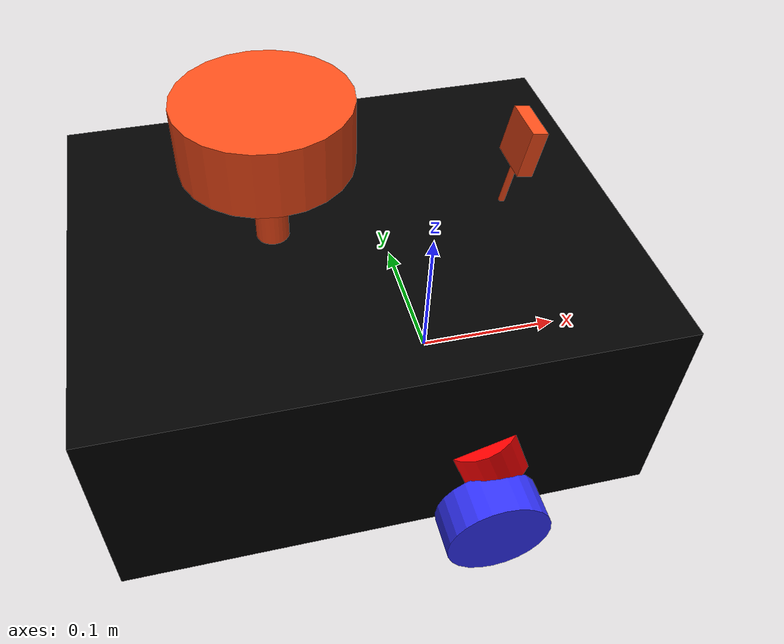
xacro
<?xml version="1.0"?>
<robot xmlns:xacro="http://www.ros.org/wiki/xacro"  name="robot">

    <xacro:arg name="use_ros2_control" default="true"/>
    <xacro:arg name="sim_mode" default="false"/>

    <xacro:include filename="robot_core.xacro" />

    <xacro:if value="$(arg use_ros2_control)">
        <xacro:include filename="ros2_control.xacro" />
    </xacro:if>
    <xacro:unless value="$(arg use_ros2_control)">
        <xacro:include filename="gazebo_control.xacro" />
    </xacro:unless>
    <xacro:include filename="lidar.xacro" />
    <xacro:include filename="lidar_droit.xacro" />
    <xacro:include filename="lidar_gauche.xacro" />
    <xacro:include filename="camera.xacro" />

</robot>

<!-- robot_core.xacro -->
<robot xmlns:xacro="http://www.ros.org/wiki/xacro" >

    <xacro:include filename="inertial_macros.xacro"/>

    <xacro:property name="chassis_length" value="0.335"/>
    <xacro:property name="chassis_width" value="0.265"/>
    <xacro:property name="chassis_height" value="0.138"/>
    <xacro:property name="chassis_mass" value="1.0"/>
    <xacro:property name="wheel_radius" value="0.033"/>
    <xacro:property name="wheel_thickness" value="0.026"/>
    <xacro:property name="wheel_mass" value="0.05"/>
    <xacro:property name="wheel_offset_x" value="0.226"/>
    <xacro:property name="wheel_offset_y" value="0.1485"/>
    <xacro:property name="wheel_offset_z" value="0.01"/>
    <xacro:property name="caster_wheel_radius" value="0.01"/>
    <xacro:property name="caster_wheel_mass" value="0.01"/>
    <xacro:property name="caster_wheel_offset_x" value="0.075"/>
    <xacro:property name="caster_wheel_offset_z" value="${wheel_offset_z - wheel_radius + caster_wheel_radius}"/>

    <material name="white">
        <color rgba="1 1 1 1" />
    </material>

    <material name="orange">
        <color rgba="1 0.3 0.1 1"/>
    </material>

    <material name="blue">
        <color rgba="0.2 0.2 1 1"/>
    </material>

    <material name="black">
        <color rgba="0 0 0 1"/>
    </material>

    <material name="red">
        <color rgba="1 0 0 1"/>
    </material>

    <!-- BASE LINK -->

    <link name="base_link">

    </link>

    <!-- BASE_FOOTPRINT LINK -->

    <joint name="base_footprint_joint" type="fixed">
        <parent link="base_link"/>
        <child link="base_footprint"/>
        <origin xyz="0 0 0" rpy="0 0 0"/>
    </joint>

    <link name="base_footprint">
    </link>

    <!-- CHASSIS LINK -->

    <joint name="chassis_joint" type="fixed">
        <parent link="base_link"/>
        <child link="chassis"/>
        <origin xyz="${-wheel_offset_x} 0 ${-wheel_offset_z}"/>
    </joint>

    <link name="chassis">
        <visual>
            <origin xyz="${chassis_length/2} 0 ${chassis_height/2}"/>
            <geometry>
                <box size="${chassis_length} ${chassis_width} ${chassis_height}"/>
            </geometry>
            <material name="black"/>
        </visual>
        <collision>
            <origin xyz="${chassis_length/2} 0 ${chassis_height/2}"/>
            <geometry>
                <box size="${chassis_length} ${chassis_width} ${chassis_height}"/>
            </geometry>
        </collision>
        <xacro:inertial_box mass="0.5" x="${chassis_length}" y="${chassis_width}" z="${chassis_height}">
            <origin xyz="${chassis_length/2} 0 ${chassis_height/2}" rpy="0 0 0"/>
        </xacro:inertial_box>
    </link>

    <gazebo reference="chassis">
        <material>Gazebo/black</material>
    </gazebo>

    <!-- LEFT WHEEL LINK -->

    <joint name="left_wheel_joint" type="continuous">
        <parent link="base_link"/>
        <child link="left_wheel"/>
        <origin xyz="0 ${wheel_offset_y} 0" rpy="-${pi/2} 0 0" />
        <axis xyz="0 0 1"/>
    </joint>

    <link name="left_wheel">
        <visual>
            <geometry>
                <cylinder radius="${wheel_radius}" length="${wheel_thickness}"/>
            </geometry>
            <material name="blue"/>
        </visual>
        <collision>
            <geometry>
                <sphere radius="${wheel_radius}"/>
            </geometry>
        </collision>
        <xacro:inertial_cylinder mass="${wheel_mass}" length="${wheel_thickness}" radius="${wheel_radius}">
            <origin xyz="0 0 0" rpy="0 0 0"/>
        </xacro:inertial_cylinder>
    </link>

    <gazebo reference="left_wheel">
        <material>Gazebo/Blue</material>
    </gazebo>

    <!-- RIGHT WHEEL LINK -->

    <joint name="right_wheel_joint" type="continuous">
        <parent link="base_link"/>
        <child link="right_wheel"/>
        <origin xyz="0 ${-wheel_offset_y} 0" rpy="${pi/2} 0 0" />
        <axis xyz="0 0 -1"/>
    </joint>

    <link name="right_wheel">
        <visual>
            <geometry>
                <cylinder radius="${wheel_radius}" length="${wheel_thickness}"/>
            </geometry>
            <material name="blue"/>
        </visual>
        <collision>
            <geometry>
                <sphere radius="${wheel_radius}"/>
            </geometry>
        </collision>
        <xacro:inertial_cylinder mass="${wheel_mass}" length="${wheel_thickness}" radius="${wheel_radius}">
            <origin xyz="0 0 0" rpy="0 0 0"/>
        </xacro:inertial_cylinder>
    </link>

    <gazebo reference="right_wheel">
        <material>Gazebo/Blue</material>
    </gazebo>

    <!-- CASTER WHEEL LINK -->

    <joint name="caster_wheel_joint" type="fixed">
        <parent link="chassis"/>
        <child link="caster_wheel"/>
        <origin xyz="${caster_wheel_offset_x} 0 ${caster_wheel_offset_z}"/>
    </joint>

    <link name="caster_wheel">
        <visual>
            <geometry>
                <sphere radius="${caster_wheel_radius}"/>
            </geometry>
            <material name="white"/>
        </visual>
        <collision>
            <geometry>
                <sphere radius="${caster_wheel_radius}"/>
            </geometry>
        </collision>
        <xacro:inertial_sphere mass="${caster_wheel_mass}" radius="${caster_wheel_radius}">
            <origin xyz="0 0 0" rpy="0 0 0"/>
        </xacro:inertial_sphere>
    </link>

    <gazebo reference="caster_wheel">
        <material>Gazebo/White</material>
        <mu1 value="0.001"/>
        <mu2 value="0.001"/>
    </gazebo>

</robot>

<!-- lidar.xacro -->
<robot xmlns:xacro="http://www.ros.org/wiki/xacro" >

    <joint name="laser_joint" type="fixed">
        <parent link="chassis"/>
        <child link="laser_frame"/>
        <origin xyz="0.122 0 0.212" rpy="0 0 0"/>
    </joint>

    <link name="laser_frame">
        <visual>
            <geometry>
                <cylinder radius="0.05" length="0.04"/>
            </geometry>
            <material name="orange"/>
        </visual>
        <visual>
            <origin xyz="0 0 -0.05"/>
            <geometry>
                <cylinder radius="0.01" length="0.1"/>
            </geometry>
            <material name="orange"/>
        </visual>
        <collision>
            <geometry>
                <cylinder radius="0.05" length="0.04"/>
            </geometry>
        </collision>
        <xacro:inertial_cylinder mass="0.1" length="0.04" radius="0.05">
            <origin xyz="0 0 0" rpy="0 0 0"/>
        </xacro:inertial_cylinder>
    </link>

    <gazebo reference="laser_frame">
        <material>Gazebo/orange</material>

        <sensor name="laser" type="ray">
            <pose> 0 0 0 0 0 0 </pose>
            <visualize>false</visualize>
            <update_rate>10</update_rate>
            <ray>
                <scan>
                    <horizontal>
                        <samples>360</samples>
                        <min_angle>-3.14</min_angle>
                        <max_angle>3.14</max_angle>
                    </horizontal>
                </scan>
                <range>
                    <min>0.3</min>
                    <max>12</max>
                </range>
            </ray>
            <plugin name="laser_controller" filename="libgazebo_ros_ray_sensor.so">
                <ros>
                    <argument>~/out:=scan</argument>
                </ros>
                <output_type>sensor_msgs/LaserScan</output_type>
                <frame_name>laser_frame</frame_name>
            </plugin>
        </sensor>
    </gazebo>

</robot>

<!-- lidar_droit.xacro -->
<robot xmlns:xacro="http://www.ros.org/wiki/xacro" >

    <!-- Joint pour LiDAR droit -->
    <joint name="lidar_right_joint" type="fixed">
        <parent link="chassis"/>
        <child link="lidar_right_frame"/>
        <!-- Position : x=0.226, y=-0.110, z=0.050 / Inclinaison pitch vers le bas (~-20°) -->
        <origin xyz="0.226 -0.110 0.050" rpy="0 -0.35 0"/>
    </joint>

    <!-- Lien du LiDAR droit -->
    <link name="lidar_right_frame">
        <visual>
            <geometry>
                <!-- Corps principal du lidar -->
                <cylinder radius="0.03" length="0.04"/>
            </geometry>
            <material name="red"/>
        </visual>
        <visual>
            <origin xyz="0 0 -0.03"/>
            <geometry>
                <!-- Petit cylindre secondaire pour design -->
                <cylinder radius="0.01" length="0.06"/>
            </geometry>
            <material name="red"/>
        </visual>
        <collision>
            <geometry>
                <cylinder radius="0.03" length="0.04"/>
            </geometry>
        </collision>
        <xacro:inertial_cylinder mass="0.1" length="0.04" radius="0.03">
            <origin xyz="0 0 0" rpy="0 0 0"/>
        </xacro:inertial_cylinder>
    </link>

    <!-- Gazebo plugin pour simulation du LiDAR droit -->
    <gazebo reference="lidar_right_frame">
        <material>Gazebo/Red</material>

        <sensor name="lidar_right" type="ray">
            <pose>0 0 0 0 0 0</pose>
            <visualize>true</visualize>
            <update_rate>15</update_rate>
            <ray>
                <scan>
                    <horizontal>
                        <samples>360</samples>
                        <min_angle>-3.14</min_angle>
                        <max_angle>3.14</max_angle>
                    </horizontal>
                </scan>
                <range>
                    <min>0.05</min>
                    <max>10.0</max>
                </range>
            </ray>
            <plugin name="lidar_right_controller" filename="libgazebo_ros_ray_sensor.so">
                <ros>
                    <argument>~/out:=scan_right</argument>
                </ros>
                <output_type>sensor_msgs/LaserScan</output_type>
                <frame_name>lidar_right_frame</frame_name>
            </plugin>
        </sensor>
    </gazebo>

</robot>

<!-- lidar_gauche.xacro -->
<robot xmlns:xacro="http://www.ros.org/wiki/xacro" >

    <!-- Joint pour LiDAR gauche -->
    <joint name="lidar_left_joint" type="fixed">
        <parent link="chassis"/>
        <child link="lidar_left_frame"/>
        <!-- Position : x=0.226, y=+0.110, z=0.050 / Inclinaison pitch vers le bas (~-20°) -->
        <origin xyz="0.226 0.110 0.050" rpy="0 -0.35 0"/>
    </joint>

    <!-- Lien du LiDAR gauche -->
    <link name="lidar_left_frame">
        <visual>
            <geometry>
                <!-- Corps principal du lidar -->
                <cylinder radius="0.03" length="0.04"/>
            </geometry>
            <material name="blue"/>
        </visual>
        <visual>
            <origin xyz="0 0 -0.03"/>
            <geometry>
                <!-- Petit cylindre secondaire pour design -->
                <cylinder radius="0.01" length="0.06"/>
            </geometry>
            <material name="blue"/>
        </visual>
        <collision>
            <geometry>
                <cylinder radius="0.03" length="0.04"/>
            </geometry>
        </collision>
        <xacro:inertial_cylinder mass="0.1" length="0.04" radius="0.03">
            <origin xyz="0 0 0" rpy="0 0 0"/>
        </xacro:inertial_cylinder>
    </link>

    <!-- Gazebo plugin pour simulation du LiDAR gauche -->
    <gazebo reference="lidar_left_frame">
        <material>Gazebo/Blue</material>

        <sensor name="lidar_left" type="ray">
            <pose>0 0 0 0 0 0</pose>
            <visualize>true</visualize>
            <update_rate>15</update_rate>
            <ray>
                <scan>
                    <horizontal>
                        <samples>360</samples>
                        <min_angle>-3.14</min_angle>
                        <max_angle>3.14</max_angle>
                    </horizontal>
                </scan>
                <range>
                    <min>0.05</min>
                    <max>10.0</max>
                </range>
            </ray>
            <plugin name="lidar_left_controller" filename="libgazebo_ros_ray_sensor.so">
                <ros>
                    <argument>~/out:=scan_left</argument>
                </ros>
                <output_type>sensor_msgs/LaserScan</output_type>
                <frame_name>lidar_left_frame</frame_name>
            </plugin>
        </sensor>
    </gazebo>

</robot>

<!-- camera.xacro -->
<robot xmlns:xacro="http://www.ros.org/wiki/xacro" >

    <joint name="camera_joint" type="fixed">
        <parent link="chassis"/>
        <child link="camera_link"/>
        <origin xyz="0.276 0 0.181" rpy="0 0.18 0"/>
    </joint>

    <link name="camera_link">
        <visual>
            <geometry>
                <box size="0.010 0.03 0.03"/>
            </geometry>
            <material name="orange"/>
        </visual>
        <visual>
            <origin xyz="0 0 -0.05"/>
            <geometry>
                <cylinder radius="0.002" length="0.1"/>
            </geometry>
            <material name="orange"/>
        </visual>
    </link>

    <joint name="camera_optical_joint" type="fixed">
        <parent link="camera_link"/>
        <child link="camera_link_optical"/>
        <origin xyz="0 0 0" rpy="${-pi/2} 0 ${-pi/2}"/>
    </joint>

    <link name="camera_link_optical"></link>

    <gazebo reference="camera_link">
        <material>Gazebo/orange</material>

        <sensor name="camera" type="camera">
            <pose> 0 0 0 0 0 0 </pose>
            <visualize>true</visualize>
            <update_rate>10</update_rate>
            <camera>
                <horizontal_fov>1.089</horizontal_fov>
                <image>
                    <format>R8G8B8</format>
                    <width>640</width>
                    <height>480</height>
                </image>
                <clip>
                    <near>0.05</near>
                    <far>8.0</far>
                </clip>
            </camera>
            <plugin name="camera_controller" filename="libgazebo_ros_camera.so">
                <frame_name>camera_link_optical</frame_name>
            </plugin>
        </sensor>
    </gazebo>

</robot>
